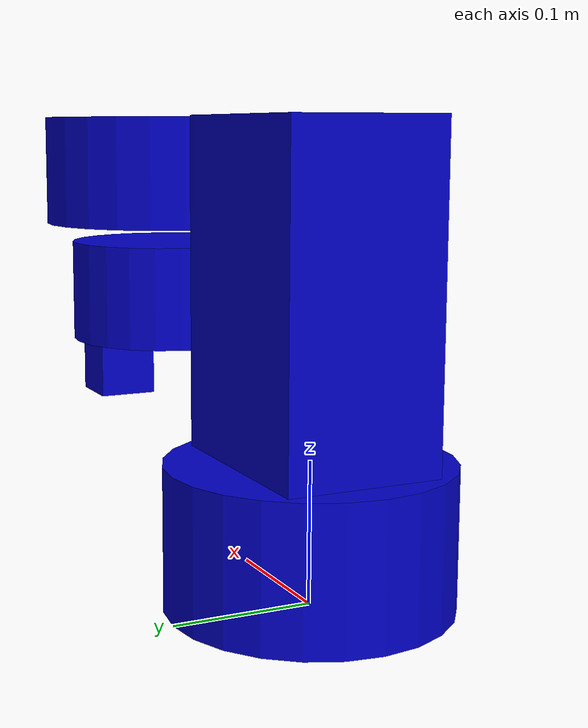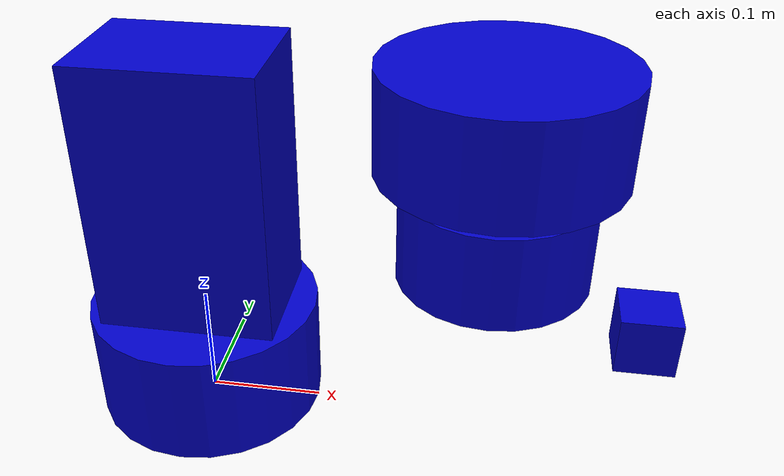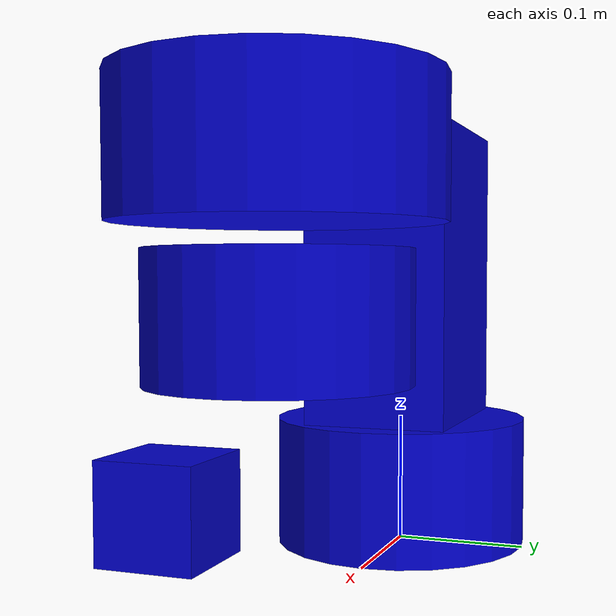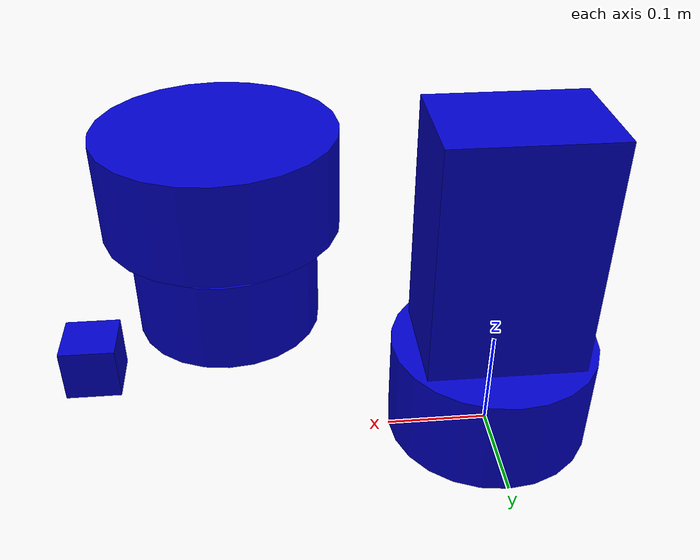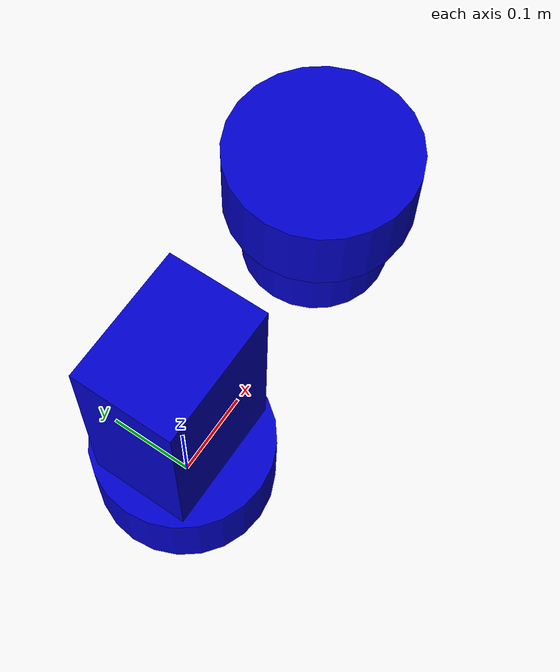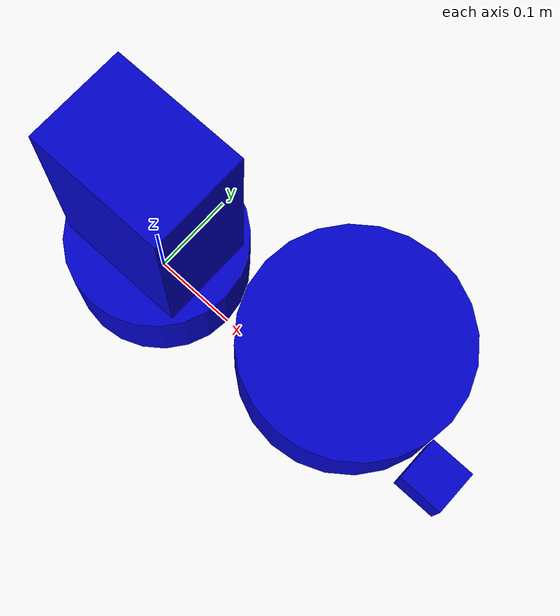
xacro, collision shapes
<?xml version="1.0"?>
<robot name="macroed" xmlns:xacro="http://ros.org/wiki/xacro">

    <!-- Parametros DH -->
    <xacro:property name="Elo1_theta" value="livre" />
    <xacro:property name="Elo1_alfa" value="${pi}" />
    <xacro:property name="Elo1_a" value="0" />
    <xacro:property name="Elo1_d" value="0.33" />

    <xacro:property name="Elo2_theta" value="0" />
    <xacro:property name="Elo2_alfa" value="0" />
    <xacro:property name="Elo2_a" value="0.25" />
    <xacro:property name="Elo2_d" value="livre" />

    <xacro:property name="Elo3_theta" value="livre" />
    <xacro:property name="Elo3_alfa" value="0" />
    <xacro:property name="Elo3_a" value="0" />
    <xacro:property name="Elo3_d" value="0.1" />

    <xacro:property name="Elo4_theta" value="livre" />
    <xacro:property name="Elo4_alfa" value="0" />
    <xacro:property name="Elo4_a" value="0.13" />
    <xacro:property name="Elo4_d" value="0.1" />

    <!-- Medidas de colisao -->
    <xacro:property name="RaioBase" value="0.1000" />
    <xacro:property name="AlturaBase" value="0.1000" />

    <xacro:property name="AlturaOmbro" value="0.2500" />
    <xacro:property name="larguraOmbro" value="0.1100" />
    <xacro:property name="ComprimentoOmbro" value="0.1500" />

    <xacro:property name="RaioBraco" value="0.1000" />
    <xacro:property name="AlturaBraco" value="0.0850" />

    <xacro:property name="RaioAntebraco" value="0.0800" />
    <xacro:property name="AlturaAntebraco" value="0.0800" />

    <xacro:property name="AlturaFerramenta" value="0.0500" />
    <xacro:property name="larguraFerramenta" value="0.0500" />
    <xacro:property name="ComprimentoFerramenta" value="0.0500" />

    <!-- Escala para arquivos .STL -->
    <xacro:property name="EscalaSTL" value="0.001 0.001 0.001" />

    <material name="blue">
    <color rgba="0 0 0.8 1"/>
    </material>

    <link name="base_link">
        <visual>
            <geometry>
                <mesh filename="package://bres/meshes/Base.stl" scale="${EscalaSTL}" />
            </geometry>
            <material name="blue"/>
            <origin xyz="0 0 ${AlturaBase/2}" rpy="0 0 ${pi/2}" />
        </visual>
        <collision>
            <geometry>
                <cylinder radius="${RaioBase}" length="${AlturaBase}"/>
            </geometry>
            <material name="blue"/>
            <origin xyz="0 0 ${AlturaBase/2}" />
        </collision>
    </link>

    <link name="Ombro">
        <visual>
            <geometry>
                <mesh filename="package://bres/meshes/Eixo_Z.stl" scale="${EscalaSTL}" />
            </geometry>
            <material name="blue"/>
            <origin xyz="0 0 ${AlturaOmbro}" rpy="${pi} 0 ${pi/2}" />
        </visual>
        <collision>
            <geometry>
                <box size="${ComprimentoOmbro} ${larguraOmbro} ${AlturaOmbro}"/>
            </geometry>
            <material name="blue"/>
            <origin xyz="0 0 ${AlturaOmbro/2}" />
        </collision>
    </link>

    <!-- Junta 1 -->
    <joint name="base_to_Ombro" type="revolute">
        <parent link="base_link"/>
        <child link="Ombro"/>
        <axis xyz="0 0 1"/>
        <limit effort="1000.0" lower="0.0" upper="0.548" velocity="0.5"/>
        <origin xyz="${Elo1_a} 0 ${Elo1_d}" rpy="${Elo1_alfa} 0 0" />
    </joint>

    <link name="Braco">
        <visual>
            <geometry>
                <mesh filename="package://bres/meshes/Braco.stl" scale="${EscalaSTL}" />
            </geometry>
            <material name="blue"/>
            <origin xyz="${0.05-Elo2_a} 0 ${AlturaBraco}" rpy="${pi} 0 ${-pi/2}" />
        </visual>
        <collision>
            <geometry>
                <cylinder radius="${RaioBraco}" length="${AlturaBraco}"/>
            </geometry>
            <material name="blue"/>
            <origin xyz="0 0 ${AlturaBraco/2}" />
        </collision>
    </link>

   <!-- Junta 2 -->
    <joint name="Ombro_to_Braco" type="prismatic">
        <parent link="Ombro"/>
        <child link="Braco"/>
        <axis xyz="0 0 1"/>
        <limit effort="1000.0" lower="0" upper="0.1" velocity="0.5"/>
        <origin xyz="${Elo2_a} 0 0" rpy="${Elo2_alfa} 0 ${Elo2_theta}" />
    </joint>

    <link name="Antebraco">
        <visual>
            <geometry>
                <mesh filename="package://bres/meshes/Antebraco.stl" scale="${EscalaSTL}" />
            </geometry>
            <material name="blue"/>
            <origin xyz="${Elo3_a} 0 0" rpy="${pi} 0 ${-pi/2}" />
        </visual>
        <collision>
            <geometry>
                <cylinder radius="${RaioAntebraco}" length="${AlturaAntebraco}"/>
            </geometry>
            <material name="blue"/>
            <origin xyz="0 0 ${AlturaAntebraco/2}" />
        </collision>
    </link>

    <!-- Junta 3 -->
    <joint name="Braco_to_Antebraco" type="revolute">
        <parent link="Braco"/>
        <child link="Antebraco"/>
        <axis xyz="0 0 1"/>
        <limit effort="1000.0" lower="0.0" upper="0.548" velocity="0.5"/>
        <origin xyz="${Elo3_a} 0 ${Elo3_d}" rpy="${Elo3_alfa} 0 0" />
    </joint>

    <link name="Ferramenta">
        <visual>
            <geometry>
                <box size="${ComprimentoFerramenta} ${larguraFerramenta} ${AlturaFerramenta}"/>
            </geometry>
            <material name="blue"/>
            <origin xyz="0 0 ${-AlturaFerramenta/2}" />
        </visual>
        <collision>
            <geometry>
                <box size="${ComprimentoFerramenta} ${larguraFerramenta} ${AlturaFerramenta}"/>
            </geometry>
            <material name="blue"/>
            <origin xyz="0 0 ${AlturaFerramenta/2}" />
        </collision>
    </link>

    <!-- Junta 4 -->
    <joint name="Antebraco_to_Ferramenta" type="revolute">
        <parent link="Antebraco"/>
        <child link="Ferramenta"/>
        <axis xyz="0 0 1"/>
        <limit effort="1000.0" lower="0.0" upper="0.548" velocity="0.5"/>
        <origin xyz="${Elo4_a} 0 ${Elo4_d}" rpy="${Elo4_alfa} 0 0" />
    </joint>

</robot>
